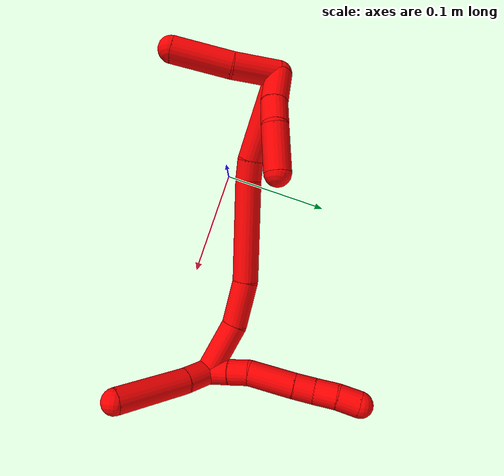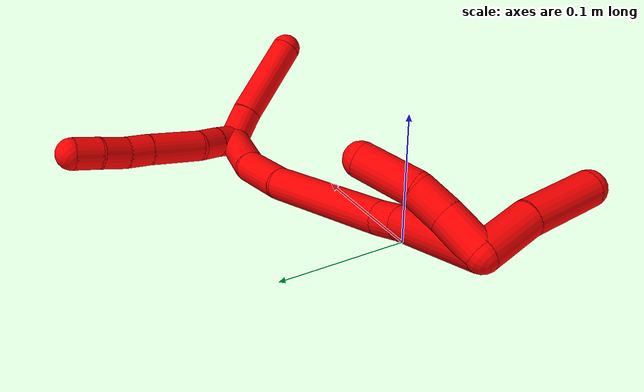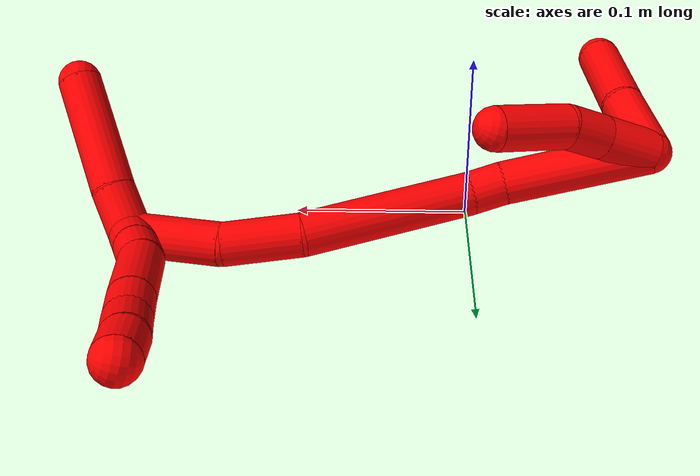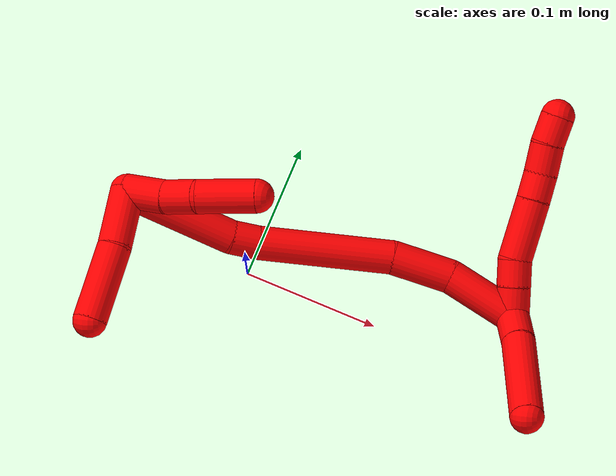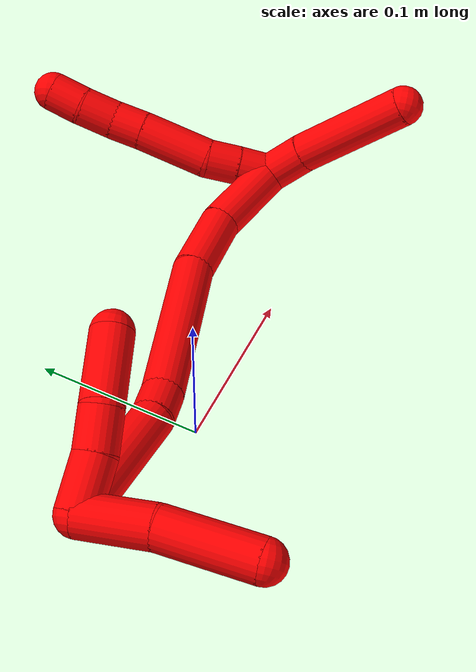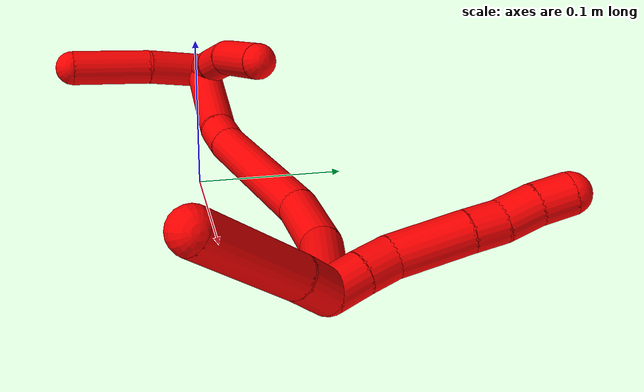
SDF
<sdf version="1.7">
 <world name="default">
  <model name="photoneo_s_sensor">
   <static>1</static>
   <pose>0 0 2 1.57079 1.57079 3.14159</pose>
   <link name="link">
    <inertial><mass>0.1</mass></inertial>
    <sensor name="sensor" type="depth">
     <update_rate>30</update_rate>
     <camera>
      <horizontal_fov>1.22</horizontal_fov>
      <image><width>1920</width><height>1200</height><format>B8G8R8</format></image>
      <clip><near>0.1</near><far>4</far></clip>
      <depth_camera><output>points</output></depth_camera>
     </camera>
     <plugin name="camera_plugin" filename="libgazebo_ros_depth_camera.so">
      <baseline>0.2</baseline>
      <alwaysOn>1</alwaysOn>
      <updateRate>0.0</updateRate>
      <cameraName>camera_ir</cameraName>
      <imageTopicName>/camera/color/image_raw</imageTopicName>
      <cameraInfoTopicName>/camera/color/camera_info</cameraInfoTopicName>
      <depthImageTopicName>/camera/depth/image_raw</depthImageTopicName>
      <depthImageCameraInfoTopicName>/camera/depth/camera_info</depthImageCameraInfoTopicName>
      <pointCloudTopicName>/camera/depth/points</pointCloudTopicName>
      <frameName>fr_optical</frameName>
      <pointCloudCutoff>0.1</pointCloudCutoff>
      <pointCloudCutoffMax>2.0</pointCloudCutoffMax>
      <distortionK1>0</distortionK1>
      <distortionK2>0</distortionK2>
      <distortionK3>0</distortionK3>
      <distortionT1>0</distortionT1>
      <distortionT2>0</distortionT2>
      <CxPrime>0</CxPrime>
      <Cx>0</Cx>
      <Cy>0</Cy>
      <focalLength>0</focalLength>
      <hackBaseline>0</hackBaseline>
     </plugin>
    </sensor>
   </link>
  </model>
  <model name="bin">
   <static>1</static>
   <link name="bottom">
    <collision name="collision-bottom">
     <pose>0 0 -0.01 0 -0 0</pose>
     <geometry><box><size>0.8 0.6 0.02</size></box></geometry>
     <surface>
      <friction><ode><mu>100</mu><mu2>100</mu2></ode></friction>
      <contact><collide_bitmask>65535</collide_bitmask></contact>
     </surface>
    </collision>
   </link>
   <link name="west_wall">
    <collision name="collision-west_wall">
     <pose>-0.41 0 0.1 0 -0 0</pose>
     <geometry><box><size>0.02 0.6 0.2</size></box></geometry>
     <surface>
      <friction><ode><mu>100</mu><mu2>100</mu2></ode></friction>
      <contact><collide_bitmask>65535</collide_bitmask></contact>
     </surface>
    </collision>
   </link>
   <link name="east_wall">
    <collision name="collision-east_wall">
     <pose>0.41 0 0.1 0 -0 0</pose>
     <geometry><box><size>0.02 0.6 0.2</size></box></geometry>
     <surface>
      <friction><ode><mu>100</mu><mu2>100</mu2></ode></friction>
      <contact><collide_bitmask>65535</collide_bitmask></contact>
     </surface>
    </collision>
   </link>
   <link name="south_wall">
    <collision name="collision-south_wall">
     <pose>0 -0.31 0.1 0 -0 0</pose>
     <geometry><box><size>0.8 0.02 0.2</size></box></geometry>
     <surface>
      <friction><ode><mu>100</mu><mu2>100</mu2></ode></friction>
      <contact><collide_bitmask>65535</collide_bitmask></contact>
     </surface>
    </collision>
   </link>
   <link name="north_wall">
    <collision name="collision-north_wall">
     <pose>0 0.31 0.1 0 -0 0</pose>
     <geometry><box><size>0.8 0.02 0.2</size></box></geometry>
     <surface>
      <friction><ode><mu>100</mu><mu2>100</mu2></ode></friction>
      <contact><collide_bitmask>65535</collide_bitmask></contact>
     </surface>
    </collision>
   </link>
  </model>
  <model name="2">
   <static>0</static>
   <link name="2">
    <collision name="collision-cylinder-e_1_2_8">
     <pose>-0.009237 0.005247 -0.000314 -1.63048 -1.05344 1.10609</pose>
     <geometry><cylinder><radius>0.0125</radius><length>0.021256</length></cylinder></geometry>
     <surface>
      <friction><ode><mu>1.16</mu><mu2>1.16</mu2><slip1>0</slip1><slip2>0</slip2></ode></friction>
      <contact><ode><kp>1e+06</kp><kd>1</kd><max_vel>0</max_vel><min_depth>0.001</min_depth></ode></contact>
     </surface>
    </collision>
    <visual name="visual-cylinder-e_1_2_8">
     <pose>-0.009237 0.005247 -0.000314 -1.63048 -1.05344 1.10609</pose>
     <geometry><cylinder><radius>0.0125</radius><length>0.021256</length></cylinder></geometry>
     <material><ambient>1 0 0 1</ambient></material>
    </visual>
    <collision name="collision-cylinder-e_2_8_9">
     <pose>-0.026948 0.015801 -0.001089 -1.65768 -1.00963 1.08494</pose>
     <geometry><cylinder><radius>0.0125</radius><length>0.020019</length></cylinder></geometry>
     <surface>
      <friction><ode><mu>1.16</mu><mu2>1.16</mu2><slip1>0</slip1><slip2>0</slip2></ode></friction>
      <contact><ode><kp>1e+06</kp><kd>1</kd><max_vel>0</max_vel><min_depth>0.001</min_depth></ode></contact>
     </surface>
    </collision>
    <visual name="visual-cylinder-e_2_8_9">
     <pose>-0.026948 0.015801 -0.001089 -1.65768 -1.00963 1.08494</pose>
     <geometry><cylinder><radius>0.0125</radius><length>0.020019</length></cylinder></geometry>
     <material><ambient>1 0 0 1</ambient></material>
    </visual>
    <collision name="collision-cylinder-e_3_9_10">
     <pose>-0.053018 0.034502 0.002703 -1.26322 -0.896848 0.676868</pose>
     <geometry><cylinder><radius>0.0125</radius><length>0.045038</length></cylinder></geometry>
     <surface>
      <friction><ode><mu>1.16</mu><mu2>1.16</mu2><slip1>0</slip1><slip2>0</slip2></ode></friction>
      <contact><ode><kp>1e+06</kp><kd>1</kd><max_vel>0</max_vel><min_depth>0.001</min_depth></ode></contact>
     </surface>
    </collision>
    <visual name="visual-cylinder-e_3_9_10">
     <pose>-0.053018 0.034502 0.002703 -1.26322 -0.896848 0.676868</pose>
     <geometry><cylinder><radius>0.0125</radius><length>0.045038</length></cylinder></geometry>
     <material><ambient>1 0 0 1</ambient></material>
    </visual>
    <collision name="collision-cylinder-e_4_10_11">
     <pose>-0.078279 0.054155 0.008497 -1.3296 -0.871588 0.699929</pose>
     <geometry><cylinder><radius>0.0125</radius><length>0.02003</length></cylinder></geometry>
     <surface>
      <friction><ode><mu>1.16</mu><mu2>1.16</mu2><slip1>0</slip1><slip2>0</slip2></ode></friction>
      <contact><ode><kp>1e+06</kp><kd>1</kd><max_vel>0</max_vel><min_depth>0.001</min_depth></ode></contact>
     </surface>
    </collision>
    <visual name="visual-cylinder-e_4_10_11">
     <pose>-0.078279 0.054155 0.008497 -1.3296 -0.871588 0.699929</pose>
     <geometry><cylinder><radius>0.0125</radius><length>0.02003</length></cylinder></geometry>
     <material><ambient>1 0 0 1</ambient></material>
    </visual>
    <collision name="collision-cylinder-e_5_11_12">
     <pose>-0.095482 0.066045 0.011709 -1.28222 -1.0188 0.789889</pose>
     <geometry><cylinder><radius>0.0125</radius><length>0.022404</length></cylinder></geometry>
     <surface>
      <friction><ode><mu>1.16</mu><mu2>1.16</mu2><slip1>0</slip1><slip2>0</slip2></ode></friction>
      <contact><ode><kp>1e+06</kp><kd>1</kd><max_vel>0</max_vel><min_depth>0.001</min_depth></ode></contact>
     </surface>
    </collision>
    <visual name="visual-cylinder-e_5_11_12">
     <pose>-0.095482 0.066045 0.011709 -1.28222 -1.0188 0.789889</pose>
     <geometry><cylinder><radius>0.0125</radius><length>0.022404</length></cylinder></geometry>
     <material><ambient>1 0 0 1</ambient></material>
    </visual>
    <collision name="collision-cylinder-e_6_12_6">
     <pose>-0.113257 0.077857 0.016002 -1.16965 -0.88697 0.60945</pose>
     <geometry><cylinder><radius>0.0125</radius><length>0.021254</length></cylinder></geometry>
     <surface>
      <friction><ode><mu>1.16</mu><mu2>1.16</mu2><slip1>0</slip1><slip2>0</slip2></ode></friction>
      <contact><ode><kp>1e+06</kp><kd>1</kd><max_vel>0</max_vel><min_depth>0.001</min_depth></ode></contact>
     </surface>
    </collision>
    <visual name="visual-cylinder-e_6_12_6">
     <pose>-0.113257 0.077857 0.016002 -1.16965 -0.88697 0.60945</pose>
     <geometry><cylinder><radius>0.0125</radius><length>0.021254</length></cylinder></geometry>
     <material><ambient>1 0 0 1</ambient></material>
    </visual>
    <collision name="collision-cylinder-e_1_2_13">
     <pose>0.002346 -0.012212 0.006375 1.08969 0.168692 0.102386</pose>
     <geometry><cylinder><radius>0.0125</radius><length>0.027948</length></cylinder></geometry>
     <surface>
      <friction><ode><mu>1.16</mu><mu2>1.16</mu2><slip1>0</slip1><slip2>0</slip2></ode></friction>
      <contact><ode><kp>1e+06</kp><kd>1</kd><max_vel>0</max_vel><min_depth>0.001</min_depth></ode></contact>
     </surface>
    </collision>
    <visual name="visual-cylinder-e_1_2_13">
     <pose>0.002346 -0.012212 0.006375 1.08969 0.168692 0.102386</pose>
     <geometry><cylinder><radius>0.0125</radius><length>0.027948</length></cylinder></geometry>
     <material><ambient>1 0 0 1</ambient></material>
    </visual>
    <collision name="collision-cylinder-e_2_13_5">
     <pose>0.012512 -0.056899 0.026243 1.17701 0.218795 0.146345</pose>
     <geometry><cylinder><radius>0.0125</radius><length>0.072052</length></cylinder></geometry>
     <surface>
      <friction><ode><mu>1.16</mu><mu2>1.16</mu2><slip1>0</slip1><slip2>0</slip2></ode></friction>
      <contact><ode><kp>1e+06</kp><kd>1</kd><max_vel>0</max_vel><min_depth>0.001</min_depth></ode></contact>
     </surface>
    </collision>
    <visual name="visual-cylinder-e_2_13_5">
     <pose>0.012512 -0.056899 0.026243 1.17701 0.218795 0.146345</pose>
     <geometry><cylinder><radius>0.0125</radius><length>0.072052</length></cylinder></geometry>
     <material><ambient>1 0 0 1</ambient></material>
    </visual>
    <collision name="collision-cylinder-e_1_2_14">
     <pose>-0.013476 0.001382 -0.022896 -3.08131 -0.531169 2.92082</pose>
     <geometry><cylinder><radius>0.0125</radius><length>0.053206</length></cylinder></geometry>
     <surface>
      <friction><ode><mu>1.16</mu><mu2>1.16</mu2><slip1>0</slip1><slip2>0</slip2></ode></friction>
      <contact><ode><kp>1e+06</kp><kd>1</kd><max_vel>0</max_vel><min_depth>0.001</min_depth></ode></contact>
     </surface>
    </collision>
    <visual name="visual-cylinder-e_1_2_14">
     <pose>-0.013476 0.001382 -0.022896 -3.08131 -0.531169 2.92082</pose>
     <geometry><cylinder><radius>0.0125</radius><length>0.053206</length></cylinder></geometry>
     <material><ambient>1 0 0 1</ambient></material>
    </visual>
    <collision name="collision-cylinder-e_2_14_15">
     <pose>-0.036003 -0.00187 -0.06577 2.9137 -0.415638 -2.14711</pose>
     <geometry><cylinder><radius>0.0125</radius><length>0.044834</length></cylinder></geometry>
     <surface>
      <friction><ode><mu>1.16</mu><mu2>1.16</mu2><slip1>0</slip1><slip2>0</slip2></ode></friction>
      <contact><ode><kp>1e+06</kp><kd>1</kd><max_vel>0</max_vel><min_depth>0.001</min_depth></ode></contact>
     </surface>
    </collision>
    <visual name="visual-cylinder-e_2_14_15">
     <pose>-0.036003 -0.00187 -0.06577 2.9137 -0.415638 -2.14711</pose>
     <geometry><cylinder><radius>0.0125</radius><length>0.044834</length></cylinder></geometry>
     <material><ambient>1 0 0 1</ambient></material>
    </visual>
    <collision name="collision-cylinder-e_3_15_16">
     <pose>-0.057756 -0.024303 -0.130026 2.75935 -0.260142 -1.18897</pose>
     <geometry><cylinder><radius>0.0125</radius><length>0.098766</length></cylinder></geometry>
     <surface>
      <friction><ode><mu>1.16</mu><mu2>1.16</mu2><slip1>0</slip1><slip2>0</slip2></ode></friction>
      <contact><ode><kp>1e+06</kp><kd>1</kd><max_vel>0</max_vel><min_depth>0.001</min_depth></ode></contact>
     </surface>
    </collision>
    <visual name="visual-cylinder-e_3_15_16">
     <pose>-0.057756 -0.024303 -0.130026 2.75935 -0.260142 -1.18897</pose>
     <geometry><cylinder><radius>0.0125</radius><length>0.098766</length></cylinder></geometry>
     <material><ambient>1 0 0 1</ambient></material>
    </visual>
    <collision name="collision-cylinder-e_4_16_17">
     <pose>-0.074465 -0.046004 -0.182715 2.70747 -0.407841 -1.5065</pose>
     <geometry><cylinder><radius>0.0125</radius><length>0.020201</length></cylinder></geometry>
     <surface>
      <friction><ode><mu>1.16</mu><mu2>1.16</mu2><slip1>0</slip1><slip2>0</slip2></ode></friction>
      <contact><ode><kp>1e+06</kp><kd>1</kd><max_vel>0</max_vel><min_depth>0.001</min_depth></ode></contact>
     </surface>
    </collision>
    <visual name="visual-cylinder-e_4_16_17">
     <pose>-0.074465 -0.046004 -0.182715 2.70747 -0.407841 -1.5065</pose>
     <geometry><cylinder><radius>0.0125</radius><length>0.020201</length></cylinder></geometry>
     <material><ambient>1 0 0 1</ambient></material>
    </visual>
    <collision name="collision-cylinder-e_5_17_1">
     <pose>-0.101265 -0.060264 -0.224218 2.83819 -0.58155 -2.197</pose>
     <geometry><cylinder><radius>0.0125</radius><length>0.082992</length></cylinder></geometry>
     <surface>
      <friction><ode><mu>1.16</mu><mu2>1.16</mu2><slip1>0</slip1><slip2>0</slip2></ode></friction>
      <contact><ode><kp>1e+06</kp><kd>1</kd><max_vel>0</max_vel><min_depth>0.001</min_depth></ode></contact>
     </surface>
    </collision>
    <visual name="visual-cylinder-e_5_17_1">
     <pose>-0.101265 -0.060264 -0.224218 2.83819 -0.58155 -2.197</pose>
     <geometry><cylinder><radius>0.0125</radius><length>0.082992</length></cylinder></geometry>
     <material><ambient>1 0 0 1</ambient></material>
    </visual>
    <collision name="collision-cylinder-e_1_1_18">
     <pose>-0.123903 -0.071604 -0.241485 0.061869 0.009909 0.000307</pose>
     <geometry><cylinder><radius>0.0125</radius><length>0.03171</length></cylinder></geometry>
     <surface>
      <friction><ode><mu>1.16</mu><mu2>1.16</mu2><slip1>0</slip1><slip2>0</slip2></ode></friction>
      <contact><ode><kp>1e+06</kp><kd>1</kd><max_vel>0</max_vel><min_depth>0.001</min_depth></ode></contact>
     </surface>
    </collision>
    <visual name="visual-cylinder-e_1_1_18">
     <pose>-0.123903 -0.071604 -0.241485 0.061869 0.009909 0.000307</pose>
     <geometry><cylinder><radius>0.0125</radius><length>0.03171</length></cylinder></geometry>
     <material><ambient>1 0 0 1</ambient></material>
    </visual>
    <collision name="collision-cylinder-e_2_18_19">
     <pose>-0.125341 -0.072425 -0.213363 -0.012914 -0.128966 0.000834</pose>
     <geometry><cylinder><radius>0.0125</radius><length>0.024805</length></cylinder></geometry>
     <surface>
      <friction><ode><mu>1.16</mu><mu2>1.16</mu2><slip1>0</slip1><slip2>0</slip2></ode></friction>
      <contact><ode><kp>1e+06</kp><kd>1</kd><max_vel>0</max_vel><min_depth>0.001</min_depth></ode></contact>
     </surface>
    </collision>
    <visual name="visual-cylinder-e_2_18_19">
     <pose>-0.125341 -0.072425 -0.213363 -0.012914 -0.128966 0.000834</pose>
     <geometry><cylinder><radius>0.0125</radius><length>0.024805</length></cylinder></geometry>
     <material><ambient>1 0 0 1</ambient></material>
    </visual>
    <collision name="collision-cylinder-e_3_19_4">
     <pose>-0.126232 -0.067076 -0.179962 -0.241155 0.032393 -0.003925</pose>
     <geometry><cylinder><radius>0.0125</radius><length>0.043485</length></cylinder></geometry>
     <surface>
      <friction><ode><mu>1.16</mu><mu2>1.16</mu2><slip1>0</slip1><slip2>0</slip2></ode></friction>
      <contact><ode><kp>1e+06</kp><kd>1</kd><max_vel>0</max_vel><min_depth>0.001</min_depth></ode></contact>
     </surface>
    </collision>
    <visual name="visual-cylinder-e_3_19_4">
     <pose>-0.126232 -0.067076 -0.179962 -0.241155 0.032393 -0.003925</pose>
     <geometry><cylinder><radius>0.0125</radius><length>0.043485</length></cylinder></geometry>
     <material><ambient>1 0 0 1</ambient></material>
    </visual>
    <collision name="collision-cylinder-e_1_1_20">
     <pose>-0.111725 -0.088476 -0.25661 1.53163 0.604263 0.582362</pose>
     <geometry><cylinder><radius>0.0125</radius><length>0.043423</length></cylinder></geometry>
     <surface>
      <friction><ode><mu>1.16</mu><mu2>1.16</mu2><slip1>0</slip1><slip2>0</slip2></ode></friction>
      <contact><ode><kp>1e+06</kp><kd>1</kd><max_vel>0</max_vel><min_depth>0.001</min_depth></ode></contact>
     </surface>
    </collision>
    <visual name="visual-cylinder-e_1_1_20">
     <pose>-0.111725 -0.088476 -0.25661 1.53163 0.604263 0.582362</pose>
     <geometry><cylinder><radius>0.0125</radius><length>0.043423</length></cylinder></geometry>
     <material><ambient>1 0 0 1</ambient></material>
    </visual>
    <collision name="collision-cylinder-e_2_20_3">
     <pose>-0.081882 -0.128354 -0.258851 1.70353 0.667329 0.754077</pose>
     <geometry><cylinder><radius>0.0125</radius><length>0.056577</length></cylinder></geometry>
     <surface>
      <friction><ode><mu>1.16</mu><mu2>1.16</mu2><slip1>0</slip1><slip2>0</slip2></ode></friction>
      <contact><ode><kp>1e+06</kp><kd>1</kd><max_vel>0</max_vel><min_depth>0.001</min_depth></ode></contact>
     </surface>
    </collision>
    <visual name="visual-cylinder-e_2_20_3">
     <pose>-0.081882 -0.128354 -0.258851 1.70353 0.667329 0.754077</pose>
     <geometry><cylinder><radius>0.0125</radius><length>0.056577</length></cylinder></geometry>
     <material><ambient>1 0 0 1</ambient></material>
    </visual>
    <collision name="collision-sphere-3">
     <pose>-0.064374 -0.150379 -0.261792 0 -0 0</pose>
     <geometry><sphere><radius>0.0125</radius></sphere></geometry>
     <surface>
      <friction><ode><mu>1.16</mu><mu2>1.16</mu2><slip1>0</slip1><slip2>0</slip2></ode></friction>
      <contact><ode><kp>1e+06</kp><kd>1</kd><max_vel>0</max_vel><min_depth>0.001</min_depth></ode></contact>
     </surface>
    </collision>
    <visual name="visual-sphere-3">
     <pose>-0.064374 -0.150379 -0.261792 0 -0 0</pose>
     <geometry><sphere><radius>0.0125</radius></sphere></geometry>
     <material><ambient>1 0 0 1</ambient></material>
    </visual>
    <collision name="collision-sphere-20">
     <pose>-0.099389 -0.10633 -0.25591 0 -0 0</pose>
     <geometry><sphere><radius>0.0125</radius></sphere></geometry>
     <surface>
      <friction><ode><mu>1.16</mu><mu2>1.16</mu2><slip1>0</slip1><slip2>0</slip2></ode></friction>
      <contact><ode><kp>1e+06</kp><kd>1</kd><max_vel>0</max_vel><min_depth>0.001</min_depth></ode></contact>
     </surface>
    </collision>
    <visual name="visual-sphere-20">
     <pose>-0.099389 -0.10633 -0.25591 0 -0 0</pose>
     <geometry><sphere><radius>0.0125</radius></sphere></geometry>
     <material><ambient>1 0 0 1</ambient></material>
    </visual>
    <collision name="collision-sphere-4">
     <pose>-0.125528 -0.061887 -0.15886 0 -0 0</pose>
     <geometry><sphere><radius>0.0125</radius></sphere></geometry>
     <surface>
      <friction><ode><mu>1.16</mu><mu2>1.16</mu2><slip1>0</slip1><slip2>0</slip2></ode></friction>
      <contact><ode><kp>1e+06</kp><kd>1</kd><max_vel>0</max_vel><min_depth>0.001</min_depth></ode></contact>
     </surface>
    </collision>
    <visual name="visual-sphere-4">
     <pose>-0.125528 -0.061887 -0.15886 0 -0 0</pose>
     <geometry><sphere><radius>0.0125</radius></sphere></geometry>
     <material><ambient>1 0 0 1</ambient></material>
    </visual>
    <collision name="collision-sphere-12">
     <pose>-0.10502 0.071676 0.01338 0 -0 0</pose>
     <geometry><sphere><radius>0.0125</radius></sphere></geometry>
     <surface>
      <friction><ode><mu>1.16</mu><mu2>1.16</mu2><slip1>0</slip1><slip2>0</slip2></ode></friction>
      <contact><ode><kp>1e+06</kp><kd>1</kd><max_vel>0</max_vel><min_depth>0.001</min_depth></ode></contact>
     </surface>
    </collision>
    <visual name="visual-sphere-12">
     <pose>-0.10502 0.071676 0.01338 0 -0 0</pose>
     <geometry><sphere><radius>0.0125</radius></sphere></geometry>
     <material><ambient>1 0 0 1</ambient></material>
    </visual>
    <collision name="collision-sphere-11">
     <pose>-0.085944 0.060414 0.010037 0 -0 0</pose>
     <geometry><sphere><radius>0.0125</radius></sphere></geometry>
     <surface>
      <friction><ode><mu>1.16</mu><mu2>1.16</mu2><slip1>0</slip1><slip2>0</slip2></ode></friction>
      <contact><ode><kp>1e+06</kp><kd>1</kd><max_vel>0</max_vel><min_depth>0.001</min_depth></ode></contact>
     </surface>
    </collision>
    <visual name="visual-sphere-11">
     <pose>-0.085944 0.060414 0.010037 0 -0 0</pose>
     <geometry><sphere><radius>0.0125</radius></sphere></geometry>
     <material><ambient>1 0 0 1</ambient></material>
    </visual>
    <collision name="collision-sphere-10">
     <pose>-0.070614 0.047895 0.006958 0 -0 0</pose>
     <geometry><sphere><radius>0.0125</radius></sphere></geometry>
     <surface>
      <friction><ode><mu>1.16</mu><mu2>1.16</mu2><slip1>0</slip1><slip2>0</slip2></ode></friction>
      <contact><ode><kp>1e+06</kp><kd>1</kd><max_vel>0</max_vel><min_depth>0.001</min_depth></ode></contact>
     </surface>
    </collision>
    <visual name="visual-sphere-10">
     <pose>-0.070614 0.047895 0.006958 0 -0 0</pose>
     <geometry><sphere><radius>0.0125</radius></sphere></geometry>
     <material><ambient>1 0 0 1</ambient></material>
    </visual>
    <collision name="collision-sphere-9">
     <pose>-0.035423 0.021108 -0.001552 0 -0 0</pose>
     <geometry><sphere><radius>0.0125</radius></sphere></geometry>
     <surface>
      <friction><ode><mu>1.16</mu><mu2>1.16</mu2><slip1>0</slip1><slip2>0</slip2></ode></friction>
      <contact><ode><kp>1e+06</kp><kd>1</kd><max_vel>0</max_vel><min_depth>0.001</min_depth></ode></contact>
     </surface>
    </collision>
    <visual name="visual-sphere-9">
     <pose>-0.035423 0.021108 -0.001552 0 -0 0</pose>
     <geometry><sphere><radius>0.0125</radius></sphere></geometry>
     <material><ambient>1 0 0 1</ambient></material>
    </visual>
    <collision name="collision-sphere-2">
     <geometry><sphere><radius>0.0125</radius></sphere></geometry>
     <surface>
      <friction><ode><mu>1.16</mu><mu2>1.16</mu2><slip1>0</slip1><slip2>0</slip2></ode></friction>
      <contact><ode><kp>1e+06</kp><kd>1</kd><max_vel>0</max_vel><min_depth>0.001</min_depth></ode></contact>
     </surface>
    </collision>
    <visual name="visual-sphere-2">
     <geometry><sphere><radius>0.0125</radius></sphere></geometry>
     <material><ambient>1 0 0 1</ambient></material>
    </visual>
    <collision name="collision-sphere-19">
     <pose>-0.126936 -0.072266 -0.201064 0 -0 0</pose>
     <geometry><sphere><radius>0.0125</radius></sphere></geometry>
     <surface>
      <friction><ode><mu>1.16</mu><mu2>1.16</mu2><slip1>0</slip1><slip2>0</slip2></ode></friction>
      <contact><ode><kp>1e+06</kp><kd>1</kd><max_vel>0</max_vel><min_depth>0.001</min_depth></ode></contact>
     </surface>
    </collision>
    <visual name="visual-sphere-19">
     <pose>-0.126936 -0.072266 -0.201064 0 -0 0</pose>
     <geometry><sphere><radius>0.0125</radius></sphere></geometry>
     <material><ambient>1 0 0 1</ambient></material>
    </visual>
    <collision name="collision-sphere-8">
     <pose>-0.018474 0.010494 -0.000627 0 -0 0</pose>
     <geometry><sphere><radius>0.0125</radius></sphere></geometry>
     <surface>
      <friction><ode><mu>1.16</mu><mu2>1.16</mu2><slip1>0</slip1><slip2>0</slip2></ode></friction>
      <contact><ode><kp>1e+06</kp><kd>1</kd><max_vel>0</max_vel><min_depth>0.001</min_depth></ode></contact>
     </surface>
    </collision>
    <visual name="visual-sphere-8">
     <pose>-0.018474 0.010494 -0.000627 0 -0 0</pose>
     <geometry><sphere><radius>0.0125</radius></sphere></geometry>
     <material><ambient>1 0 0 1</ambient></material>
    </visual>
    <collision name="collision-sphere-6">
     <pose>-0.121495 0.084038 0.018624 0 -0 0</pose>
     <geometry><sphere><radius>0.0125</radius></sphere></geometry>
     <surface>
      <friction><ode><mu>1.16</mu><mu2>1.16</mu2><slip1>0</slip1><slip2>0</slip2></ode></friction>
      <contact><ode><kp>1e+06</kp><kd>1</kd><max_vel>0</max_vel><min_depth>0.001</min_depth></ode></contact>
     </surface>
    </collision>
    <visual name="visual-sphere-6">
     <pose>-0.121495 0.084038 0.018624 0 -0 0</pose>
     <geometry><sphere><radius>0.0125</radius></sphere></geometry>
     <material><ambient>1 0 0 1</ambient></material>
    </visual>
    <collision name="collision-sphere-13">
     <pose>0.004692 -0.024423 0.01275 0 -0 0</pose>
     <geometry><sphere><radius>0.0125</radius></sphere></geometry>
     <surface>
      <friction><ode><mu>1.16</mu><mu2>1.16</mu2><slip1>0</slip1><slip2>0</slip2></ode></friction>
      <contact><ode><kp>1e+06</kp><kd>1</kd><max_vel>0</max_vel><min_depth>0.001</min_depth></ode></contact>
     </surface>
    </collision>
    <visual name="visual-sphere-13">
     <pose>0.004692 -0.024423 0.01275 0 -0 0</pose>
     <geometry><sphere><radius>0.0125</radius></sphere></geometry>
     <material><ambient>1 0 0 1</ambient></material>
    </visual>
    <collision name="collision-sphere-5">
     <pose>0.020331 -0.089375 0.039736 0 -0 0</pose>
     <geometry><sphere><radius>0.0125</radius></sphere></geometry>
     <surface>
      <friction><ode><mu>1.16</mu><mu2>1.16</mu2><slip1>0</slip1><slip2>0</slip2></ode></friction>
      <contact><ode><kp>1e+06</kp><kd>1</kd><max_vel>0</max_vel><min_depth>0.001</min_depth></ode></contact>
     </surface>
    </collision>
    <visual name="visual-sphere-5">
     <pose>0.020331 -0.089375 0.039736 0 -0 0</pose>
     <geometry><sphere><radius>0.0125</radius></sphere></geometry>
     <material><ambient>1 0 0 1</ambient></material>
    </visual>
    <collision name="collision-sphere-14">
     <pose>-0.026951 0.002764 -0.045792 0 -0 0</pose>
     <geometry><sphere><radius>0.0125</radius></sphere></geometry>
     <surface>
      <friction><ode><mu>1.16</mu><mu2>1.16</mu2><slip1>0</slip1><slip2>0</slip2></ode></friction>
      <contact><ode><kp>1e+06</kp><kd>1</kd><max_vel>0</max_vel><min_depth>0.001</min_depth></ode></contact>
     </surface>
    </collision>
    <visual name="visual-sphere-14">
     <pose>-0.026951 0.002764 -0.045792 0 -0 0</pose>
     <geometry><sphere><radius>0.0125</radius></sphere></geometry>
     <material><ambient>1 0 0 1</ambient></material>
    </visual>
    <collision name="collision-sphere-15">
     <pose>-0.045054 -0.006503 -0.085748 0 -0 0</pose>
     <geometry><sphere><radius>0.0125</radius></sphere></geometry>
     <surface>
      <friction><ode><mu>1.16</mu><mu2>1.16</mu2><slip1>0</slip1><slip2>0</slip2></ode></friction>
      <contact><ode><kp>1e+06</kp><kd>1</kd><max_vel>0</max_vel><min_depth>0.001</min_depth></ode></contact>
     </surface>
    </collision>
    <visual name="visual-sphere-15">
     <pose>-0.045054 -0.006503 -0.085748 0 -0 0</pose>
     <geometry><sphere><radius>0.0125</radius></sphere></geometry>
     <material><ambient>1 0 0 1</ambient></material>
    </visual>
    <collision name="collision-sphere-16">
     <pose>-0.070458 -0.042104 -0.174303 0 -0 0</pose>
     <geometry><sphere><radius>0.0125</radius></sphere></geometry>
     <surface>
      <friction><ode><mu>1.16</mu><mu2>1.16</mu2><slip1>0</slip1><slip2>0</slip2></ode></friction>
      <contact><ode><kp>1e+06</kp><kd>1</kd><max_vel>0</max_vel><min_depth>0.001</min_depth></ode></contact>
     </surface>
    </collision>
    <visual name="visual-sphere-16">
     <pose>-0.070458 -0.042104 -0.174303 0 -0 0</pose>
     <geometry><sphere><radius>0.0125</radius></sphere></geometry>
     <material><ambient>1 0 0 1</ambient></material>
    </visual>
    <collision name="collision-sphere-17">
     <pose>-0.078471 -0.049904 -0.191127 0 -0 0</pose>
     <geometry><sphere><radius>0.0125</radius></sphere></geometry>
     <surface>
      <friction><ode><mu>1.16</mu><mu2>1.16</mu2><slip1>0</slip1><slip2>0</slip2></ode></friction>
      <contact><ode><kp>1e+06</kp><kd>1</kd><max_vel>0</max_vel><min_depth>0.001</min_depth></ode></contact>
     </surface>
    </collision>
    <visual name="visual-sphere-17">
     <pose>-0.078471 -0.049904 -0.191127 0 -0 0</pose>
     <geometry><sphere><radius>0.0125</radius></sphere></geometry>
     <material><ambient>1 0 0 1</ambient></material>
    </visual>
    <collision name="collision-sphere-1">
     <pose>-0.12406 -0.070623 -0.257309 0 -0 0</pose>
     <geometry><sphere><radius>0.0125</radius></sphere></geometry>
     <surface>
      <friction><ode><mu>1.16</mu><mu2>1.16</mu2><slip1>0</slip1><slip2>0</slip2></ode></friction>
      <contact><ode><kp>1e+06</kp><kd>1</kd><max_vel>0</max_vel><min_depth>0.001</min_depth></ode></contact>
     </surface>
    </collision>
    <visual name="visual-sphere-1">
     <pose>-0.12406 -0.070623 -0.257309 0 -0 0</pose>
     <geometry><sphere><radius>0.0125</radius></sphere></geometry>
     <material><ambient>1 0 0 1</ambient></material>
    </visual>
    <collision name="collision-sphere-18">
     <pose>-0.123746 -0.072584 -0.225661 0 -0 0</pose>
     <geometry><sphere><radius>0.0125</radius></sphere></geometry>
     <surface>
      <friction><ode><mu>1.16</mu><mu2>1.16</mu2><slip1>0</slip1><slip2>0</slip2></ode></friction>
      <contact><ode><kp>1e+06</kp><kd>1</kd><max_vel>0</max_vel><min_depth>0.001</min_depth></ode></contact>
     </surface>
    </collision>
    <visual name="visual-sphere-18">
     <pose>-0.123746 -0.072584 -0.225661 0 -0 0</pose>
     <geometry><sphere><radius>0.0125</radius></sphere></geometry>
     <material><ambient>1 0 0 1</ambient></material>
    </visual>
    <inertial>
     <pose>-0.064301 -0.032892 -0.110583 0 -0 0</pose>
     <mass>0.75</mass>
     <inertia>
      <ixx>-4.1e-05</ixx>
      <ixy>0</ixy>
      <ixz>0</ixz>
      <iyy>-1.7e-05</iyy>
      <iyz>0</iyz>
      <izz>0.00013</izz>
     </inertia>
    </inertial>
   </link>
   <pose>0.190515 0.044445 0.012055 -1.08407 0.73368 -1.00477</pose>
  </model>
 </world>
</sdf>
